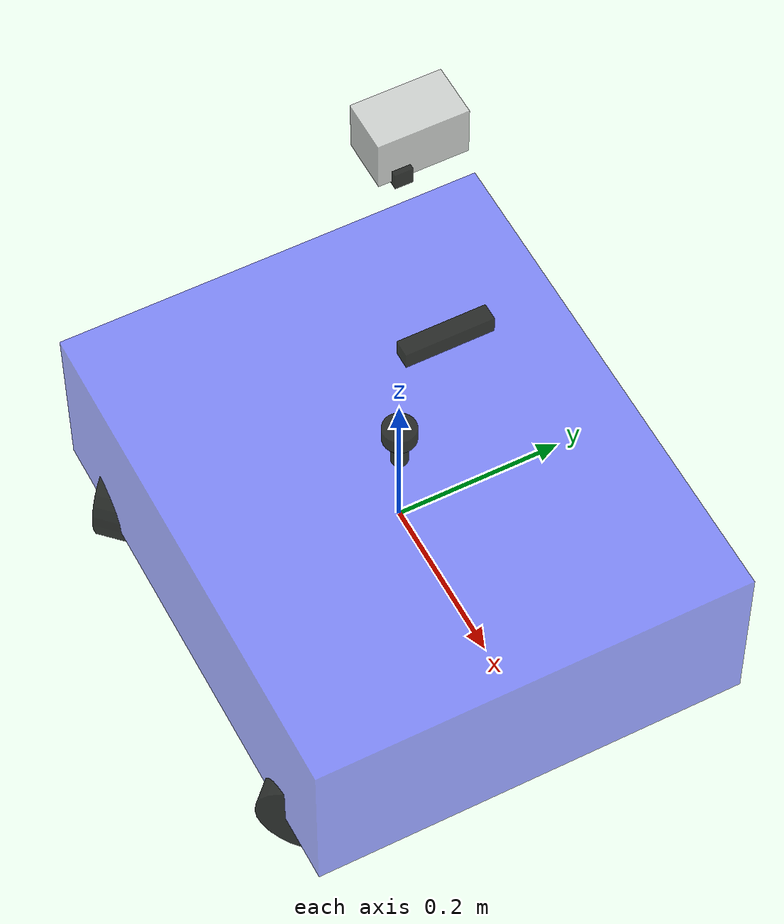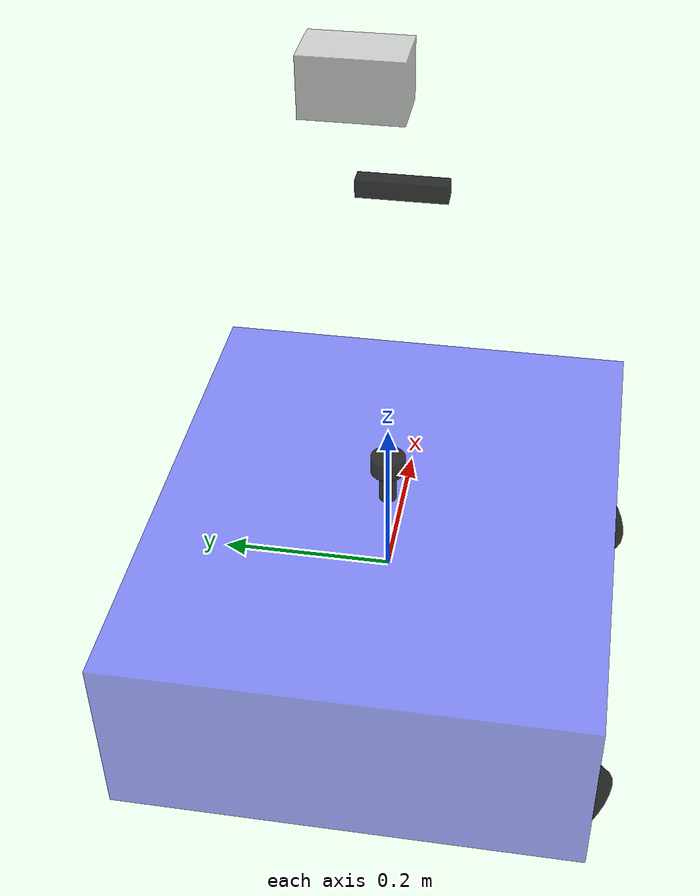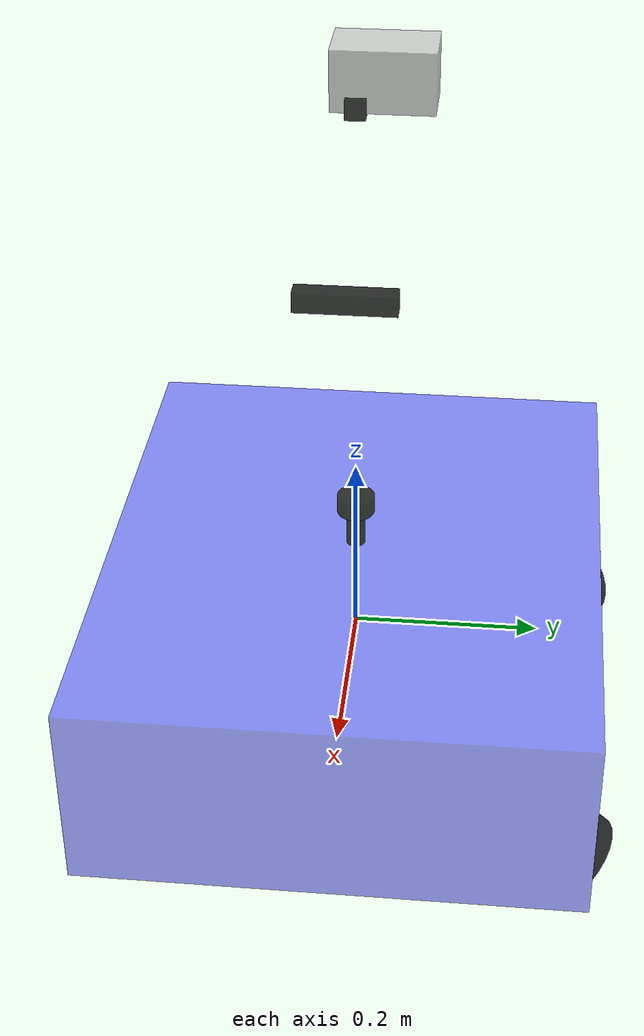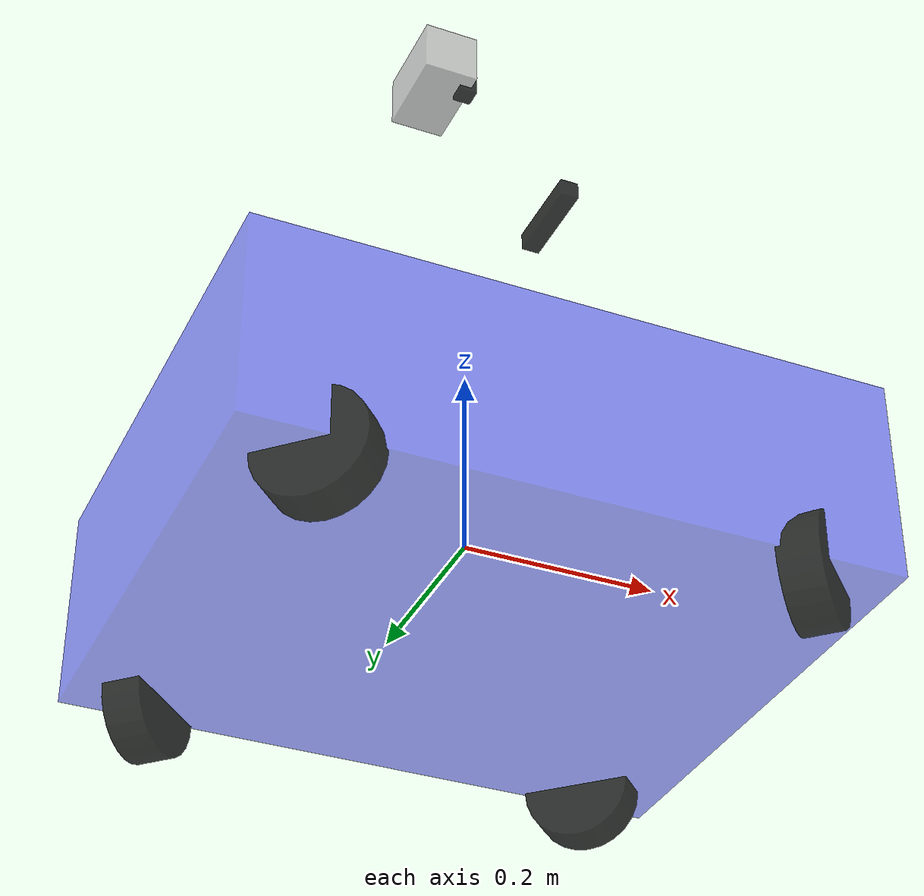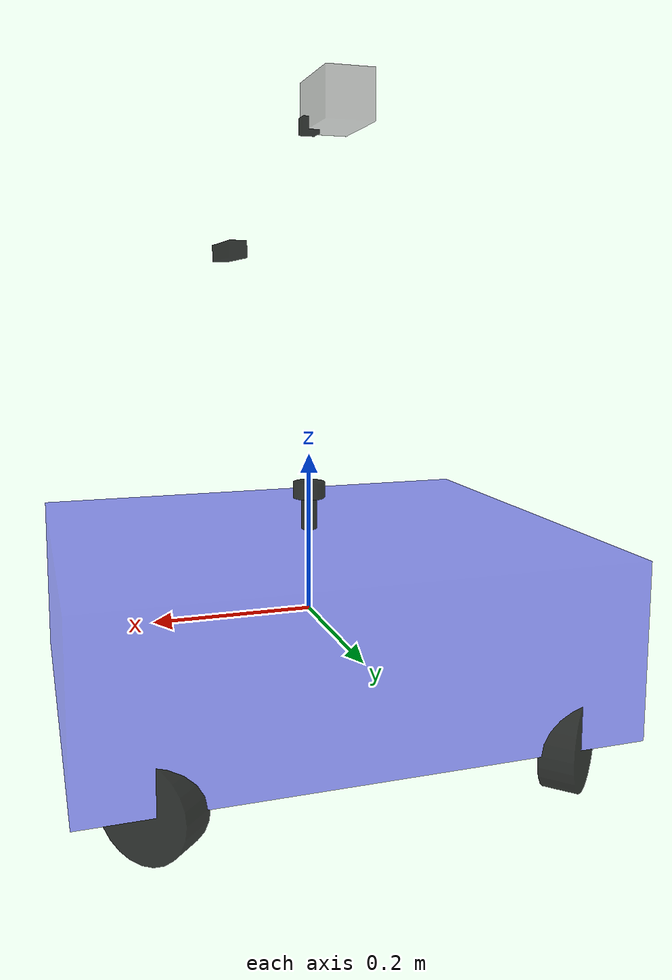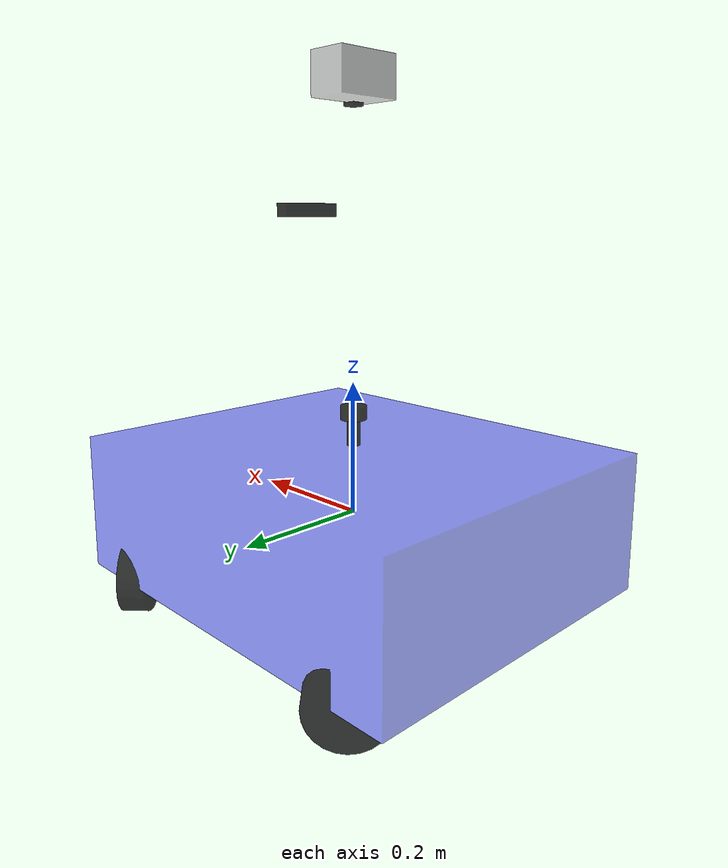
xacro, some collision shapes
<?xml version="1.0"?>
<robot xmlns:xacro="http://www.ros.org/wiki/xacro" name="bngu_sentinel">
    <xacro:include filename="$(find rm_bnrobot_sim)/urdf/bngu_sentinel/base.urdf.xacro" />
    <!-- 传感器组件 -->
    <xacro:include filename="$(find rm_bnrobot_sim)/urdf/bngu_sentinel/sensor/imu.urdf.xacro" />
    <xacro:include filename="$(find rm_bnrobot_sim)/urdf/bngu_sentinel/sensor/laser.urdf.xacro" />
    <xacro:include filename="$(find rm_bnrobot_sim)/urdf/bngu_sentinel/sensor/camera.urdf.xacro" />
    <xacro:include filename="$(find rm_bnrobot_sim)/urdf/bngu_sentinel/sensor/mid360.urdf.xacro" />

     <!-- 执行器组件 -->
    <xacro:include filename="$(find rm_bnrobot_sim)/urdf/bngu_sentinel/actuator/wheel.urdf.xacro" />
    <xacro:include filename="$(find rm_bnrobot_sim)/urdf/bngu_sentinel/actuator/caster.urdf.xacro" />
    <xacro:include filename="$(find rm_bnrobot_sim)/urdf/bngu_sentinel/actuator/wheel_s.urdf.xacro" />

    <xacro:base_xacro length="0.633" width="0.526" height="0.21" />

    <!-- 传感器 -->
    <xacro:laser_xacro xyz="0 0 0.105" />

    <xacro:mid360 name="mid360_laser" topic="/livox/lidar">

        <origin xyz="0 0 0.6" rpy="${M_PI} 0 ${M_PI/2}" />
    </xacro:mid360>

    <xacro:imu_xacro xyz="0 0 0.6" />

    <xacro:camera_xacro xyz="0.10 0 0.45" />
    <!-- 麦克纳姆轮配置，保持原有轮距参数 -->

    <xacro:wheel_xacro wheel_name="front_left" xyz="0.235 -0.235 -0.105" yaw="0.7854" axis="-1 1 0" />
    <xacro:wheel_xacro wheel_name="front_right" xyz="0.235 0.235 -0.105" yaw="2.3562" axis="1 1 0" />
    <xacro:wheel_xacro wheel_name="rear_left" xyz="-0.235 -0.235 -0.105" yaw="-0.7854" axis="-1 -1 0" />
    <xacro:wheel_xacro wheel_name="rear_right" xyz="-0.235 0.235 -0.105" yaw="-2.3562" axis="1 -1 0" />

    <!-- Gazebo 插件 -->
    <xacro:include filename="$(find rm_bnrobot_sim)/urdf/bngu_sentinel/plugins/gazebo_control_plugin.xacro" />
    <xacro:gazebo_control_plugin />
    <xacro:include filename="$(find rm_bnrobot_sim)/urdf/bngu_sentinel/bnbot.ros2_control.xacro" />
    <xacro:bngu_sentinel_ros2_control />
    <xacro:include filename="$(find rm_bnrobot_sim)/urdf/bngu_sentinel/plugins/gazebo_sensor_plugin.xacro" />
    <xacro:gazebo_sensor_plugin />
</robot>

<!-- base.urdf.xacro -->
<robot xmlns:xacro="http://www.ros.org/wiki/xacro">
    <xacro:include filename="$(find rm_bnrobot_sim)/urdf/bngu_sentinel/common_inertia.xacro" />

    <xacro:macro name="base_xacro" params="length width height">
        <link name="base_link">
            <visual>
                <origin xyz="0 0 0.0" rpy="0 0 0" />
                <geometry>
                    <box size="${length} ${width} ${height}" />
                </geometry>
                <material name="blue">
                    <color rgba="0.1 0.1 1.0 0.5"/>
                </material>
            </visual>

            <collision>
                <origin xyz="0 0 0.0" rpy="0 0 0" />
                <geometry>
                    <box size="${length} ${width} ${height}" />
                </geometry>
            </collision>

            <xacro:box_inertia m="1.0" w="${length}" h="${width}" d="${height}"/>
        </link>
    </xacro:macro>
</robot>

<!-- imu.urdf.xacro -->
<robot xmlns:xacro="http://www.ros.org/wiki/xacro">
   <xacro:include filename="$(find rm_bnrobot_sim)/urdf/bngu_sentinel/common_inertia.xacro" />
    <xacro:macro name="imu_xacro" params="xyz">
        <link name="imu_link">
            <visual>
                <origin xyz="0 0 0" rpy="0 0 0" />
                <geometry>
                    <box size="0.02 0.02 0.02" />
                </geometry>
                <material name="black">
                    <color rgba="0 0 0 0.8" />
                </material>
            </visual>
            <collision>
                <origin xyz="0 0 00" rpy="0 0 0" />
                <geometry>
                    <box size="0.02 0.02 0.02" />
                </geometry>
                <material name="black">
                    <color rgba="0 0 0 0.8" />
                </material>
            </collision>
            <xacro:box_inertia m="0.01" w="0.02" d="0.02" h="0.02"/>
        </link>

        <joint name="imu_joint" type="fixed">
            <parent link="base_link" />
            <child link="imu_link" />
            <origin xyz="${xyz}" rpy="${M_PI} 0 ${M_PI/2}" />
        </joint>
    </xacro:macro>
</robot>

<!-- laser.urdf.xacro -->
<robot xmlns:xacro="http://www.ros.org/wiki/xacro">
   <xacro:include filename="$(find rm_bnrobot_sim)/urdf/bngu_sentinel/common_inertia.xacro" />
    <xacro:macro name="laser_xacro" params="xyz">
        <gazebo reference="laser_cylinder_link">
            <material>Gazebo/Black</material>
        </gazebo>
        <gazebo reference="laser_link">
            <material>Gazebo/Black</material>
        </gazebo>

        <!-- ============雷达支撑杆================ -->
        <link name="laser_cylinder_link">
            <visual>
                <origin xyz="0 0 0" rpy="0 0 0" />
                <geometry>
                    <cylinder length="0.10" radius="0.01" />
                </geometry>
                <material name="black">
                    <color rgba="0.0 0.0 0.0 0.8" />
                </material>
            </visual>
            <collision>
                <origin xyz="0 0 0" rpy="0 0 0" />
                <geometry>
                    <cylinder length="0.10" radius="0.01" />
                </geometry>
                <material name="black">
                    <color rgba="0.0 0.0 0.0 0.8" />
                </material>
            </collision>
            <xacro:cylinder_inertia m="0.01" r="0.01" h="0.10" />
        </link>

        <joint name="laser_cylinder_joint" type="fixed">
            <parent link="base_link" />
            <child link="laser_cylinder_link" />
            <origin xyz="${xyz}" />
        </joint>
        <!-- ============雷达================ -->
        <link name="laser_link">
            <visual>
                <origin xyz="0 0 0" rpy="0 0 0" />
                <geometry>
                    <cylinder length="0.02" radius="0.02" />
                </geometry>
                <material name="black">
                    <color rgba="0.0 0.0 0.0 0.8" />
                </material>
            </visual>
            <collision>
                <origin xyz="0 0 0" rpy="0 0 0" />
                <geometry>
                    <cylinder length="0.02" radius="0.02" />
                </geometry>
                <material name="black">
                    <color rgba="0.0 0.0 0.0 0.8" />
                </material>
            </collision>
            <xacro:cylinder_inertia m="0.03" r="0.02" h="0.02" />
        </link>

        <joint name="laser_joint" type="fixed">
            <parent link="laser_cylinder_link" />
            <child link="laser_link" />
            <origin xyz="0 0 0.05" />
        </joint>

    </xacro:macro>

</robot>

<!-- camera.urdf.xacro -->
<robot xmlns:xacro="http://www.ros.org/wiki/xacro">
   <xacro:include filename="$(find rm_bnrobot_sim)/urdf/bngu_sentinel/common_inertia.xacro" />
    <xacro:macro name="camera_xacro" params="xyz">
        <!-- ============相机模块================ -->
        <link name="camera_link">
            <visual>
                <origin xyz="0 0 0.0" rpy="0 0 0" />
                <geometry>
                    <box size="0.02 0.10 0.02" />
                </geometry>
                <material name="black">
                    <color rgba="0.0 0.0 0.0 0.8"/>
                </material>
            </visual>
            <collision>
                <origin xyz="0 0 0.0" rpy="0 0 0" />
                <geometry>
                    <box size="0.02 0.10 0.02" />
                </geometry>
                <material name="black">
                    <color rgba="0.0 0.0 0.0 0.8"/>
                </material>
            </collision>
            <xacro:box_inertia m="0.01" w="0.02" h="0.10" d="0.02" />
        </link>
        <link name="camera_optical_link"></link>
        <joint name="camera_optical_joint" type="fixed">
            <parent link="camera_link" />
            <child link="camera_optical_link" />
            <origin xyz="0 0 0" rpy="${-pi/2} 0 ${-pi/2}" />
        </joint>

        <joint name="camera_joint" type="fixed">
            <parent link="base_link" />
            <child link="camera_link" />
            <origin xyz="${xyz}" />
        </joint>
    </xacro:macro>

</robot>

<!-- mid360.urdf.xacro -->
<robot xmlns:xacro="http://www.ros.org/wiki/xacro">

  <xacro:property name="M_PI" value="3.1415926"/>
  <!-- 雷达物理参数 -->
  <xacro:property name="mid360_mass" value="0.4" />
  <xacro:property name="mid360_length" value="0.1" />
  <xacro:property name="mid360_width" value="0.06" />
  <xacro:property name="mid360_height" value="0.06" />

  <!-- 激光雷达性能参数（匹配硬件规格） -->
  <xacro:property name="laser_min_range" value="0.1" /> <!-- 最小探测距离（m） -->
  <xacro:property name="laser_max_range" value="200.0" /> <!-- 最大探测距离（m） -->
  <xacro:property name="laser_update_rate" value="20" /> <!-- 刷新频率（Hz），Mid360最大支持20Hz -->
  <xacro:property name="horizontal_samples" value="300" /> <!-- 水平采样数（越多数据越密） -->
  <xacro:property name="vertical_samples" value="64" /> <!-- 垂直采样数（Mid360实际为64线） -->
  <xacro:property name="horizontal_min_angle" value="0" /> <!-- 水平最小角度（弧度） -->
  <xacro:property name="horizontal_max_angle" value="${2*M_PI}" /> <!-- 水平最大角度（360°） -->
  <xacro:property name="vertical_min_angle" value="${-7.22/180*M_PI}" /> <!-- 垂直最小角度（-7.22°） -->
  <xacro:property name="vertical_max_angle" value="${55.22/180*M_PI}" /> <!-- 垂直最大角度（55.22°） -->
  <xacro:property name="laser_resolution" value="0.002" /> <!-- 距离分辨率（m） -->
  <xacro:property name="noise_mean" value="0.0" /> <!-- 噪声均值 -->
  <xacro:property name="noise_stddev" value="0.002" /> <!-- 噪声标准差 -->
  <xacro:property name="downsample_rate" value="2" /> <!-- 降采样系数（2=每2个点保留1个） -->

  <!-- 2. 雷达模型-->
  <xacro:macro name="mid360" params=" name:='mid360_laser' parent:='base_link' topic:='/livox/lidar' *origin">
    <link name="${name}">
      <visual>
        <!-- 雷达自身坐标系到link的偏移-->
        <origin xyz="0.025 -0.0265 -0.025" rpy="${M_PI/2} 0 ${M_PI}"/>
        <geometry>
          <mesh filename="file:///home/nav2/navigation_2027/navi_rm_0/src/rm_bnrobot_sim/meshes/mid360.stl" scale="0.0008 0.0008 0.0008"/>
        </geometry>
        <material name="black">
          <color rgba="0.8 0.8 0.8 0.8"/>
        </material>
      </visual>

      <collision>
        <origin xyz="0.025 -0.0265 -0.025" rpy="${M_PI/2} 0 ${M_PI}"/>
        <geometry>
          <box size="${mid360_length} ${mid360_width} ${mid360_height}"/>
        </geometry>
      </collision>

      <!-- 惯性参数 -->
      <xacro:box_inertia
        m="${mid360_mass}"
        w="${mid360_length}"
        h="${mid360_width}"
        d="${mid360_height}"/>
    </link>

    <joint name="${name}_joint" type="fixed">
      <parent link="${parent}"/>
      <child link="${name}"/>
      <xacro:insert_block name="origin"/>
    </joint>

    <!-- 5. Gazebo传感器插件配置 -->
    <gazebo reference="${name}">
      <sensor type="ray" name="${name}">
        <pose>0.0 0.0 0.0 0 0</pose><!-- 传感器自身在link中的姿态（无偏移） -->
        <visualize>true</visualize> <!-- 在Gazebo中显示扫描线（调试用） -->
        <update_rate>${laser_update_rate}</update_rate> <!-- 刷新频率 -->

        <!-- 6. Livox雷达插件（发布点云数据） -->
        <plugin name="${name}_plugin" filename="libros2_livox.so">
          <simulate>true</simulate>

          <ray>
            <scan>
              <!-- 水平扫描参数 -->
              <horizontal>
                <samples>${horizontal_samples}</samples>
                <resolution>1</resolution>
                <min_angle>${horizontal_min_angle}</min_angle>
                <max_angle>${horizontal_max_angle}</max_angle>
              </horizontal>
              <!-- 垂直扫描参数 -->
              <vertical>
                <samples>${vertical_samples}</samples>
                <resolution>1</resolution>
                <min_angle>${vertical_min_angle}</min_angle>
                <max_angle>${vertical_max_angle}</max_angle>
              </vertical>
            </scan>
            <!-- 距离参数 -->
            <range>
              <min>${laser_min_range}</min>
              <max>${laser_max_range}</max>
              <resolution>${laser_resolution}</resolution>
            </range>
            <!-- 噪声参数 -->
            <noise>
              <type>gaussian</type>
              <mean>${noise_mean}</mean>
              <stddev>${noise_stddev}</stddev>
            </noise>
          </ray>

          <visualize>true</visualize> <!-- 点云可视化由RViz负责，Gazebo中关闭 -->
          <samples>${horizontal_samples * vertical_samples}</samples> <!-- 总采样数 -->
          <downsample>${downsample_rate}</downsample> <!-- 降采样 -->
          <csv_file_name>$(find rm_bnrobot_sim)/scan_mode/mid360.csv</csv_file_name> 扫描模式配置文件
          <topic>${topic}</topic> <!-- 点云发布话题 -->
        </plugin>
      </sensor>
    </gazebo>
  </xacro:macro>
</robot>

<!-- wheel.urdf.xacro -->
<robot xmlns:xacro="http://www.ros.org/wiki/xacro">
   <xacro:include filename="$(find rm_bnrobot_sim)/urdf/bngu_sentinel/common_inertia.xacro" />

    <xacro:macro name="wheel_xacro" params="wheel_name xyz yaw axis">
        <link name="${wheel_name}_wheel_link">
            <visual>
                <origin xyz="0 0 0" rpy="1.57079 0 ${yaw}" />
                <geometry>
                    <cylinder length="0.04" radius="0.055" />
                </geometry>
                <material name="black">
                    <color rgba="0.0 0.0 0.0 0.8"/>
                </material>
            </visual>

            <collision>
                <origin xyz="0 0 0" rpy="1.57079 0 ${yaw}" />
                <geometry>
                    <cylinder length="0.04" radius="0.055" />
                </geometry>
            </collision>

            <xacro:cylinder_inertia m="0.6" h="0.04" r="0.055"/>
        </link>

        <!-- Gazebo物理参数 -->
        <gazebo reference="${wheel_name}_wheel_link">
            <!-- 摩擦系数：mu1=横向（辊子方向），mu2=纵向（轴线方向） -->
            <mu1 value="1.0" />
            <mu2 value="1.0" />

            <!-- 接触刚度/阻尼 -->
            <kp value="30000.0" />
            <kd value="15.0" />

            <!-- 滚动摩擦 -->
            <rolling_friction value="0.001" />
            <slip1 value="0.005" />
            <slip2 value="0.005" />

            <material>Gazebo/Black</material>
        </gazebo>

        <!-- 关节定义 -->
        <joint name="${wheel_name}_wheel_joint" type="continuous">
            <parent link="base_link" />
            <child link="${wheel_name}_wheel_link" />
            <origin xyz="${xyz}" />
            <axis xyz="${axis}" />

            <!-- 动力学参数-->
            <dynamics damping="0.8" friction="0.05" />

            <limit effort="100" velocity="100" />
            <calibration rising="0.0" />
        </joint>
    </xacro:macro>
</robot>
